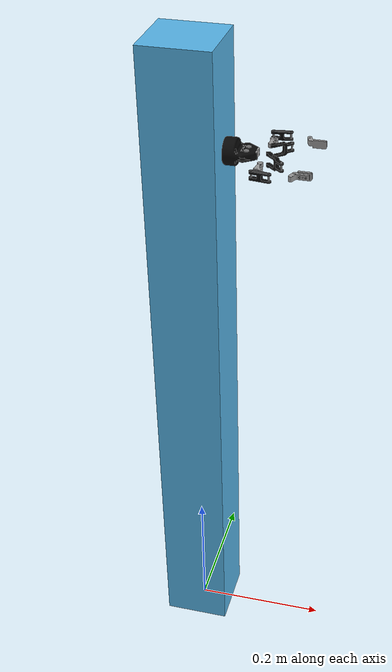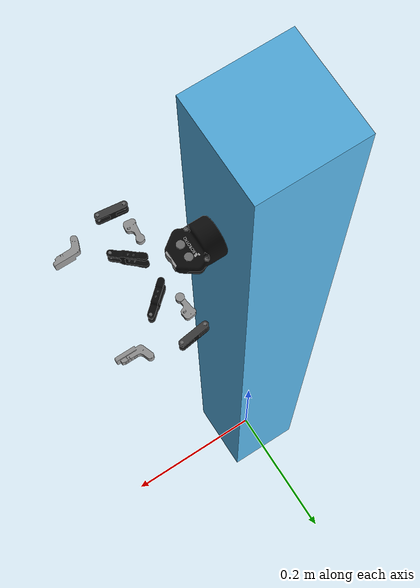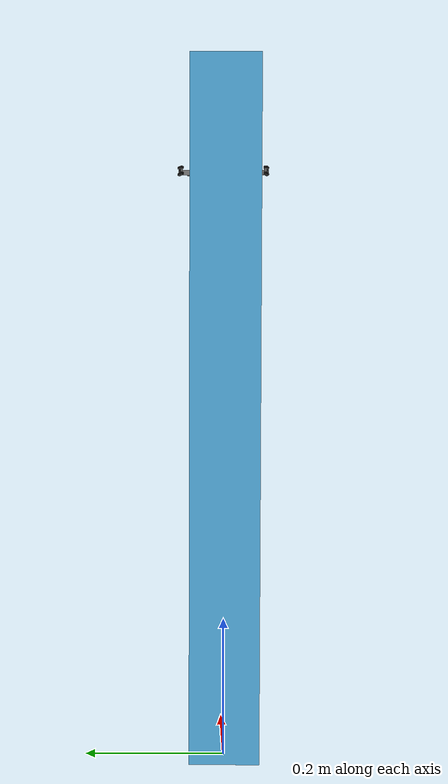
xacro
<?xml version="1.0" ?>
<!-- |    This document was autogenerated by xacro from robotiq.urdf.xacro             | -->
<!-- |    EDITING THIS FILE BY HAND IS NOT RECOMMENDED                                 | -->
<robot name="robotiq_85_gripper">
  <gazebo>
    <plugin filename="libgazebo_ros_control.so" name="gazebo_ros_control">
      <robotNamespace>/</robotNamespace>
    </plugin>
  </gazebo>
  <link name="world"/>
  <joint name="world_fixed" type="fixed">
    <origin rpy="0 0 0" xyz="0 0 0"/>
    <parent link="world"/>
    <child link="gripper_root_link"/>
  </joint>
  <link name="gripper_root_link">
    <visual>
      <origin rpy="0 0 0" xyz="0 0 0.5"/>
      <geometry>
        <box size="0.1 0.1 1.0"/>
      </geometry>
    </visual>
    <collision>
      <origin rpy="0 0 0" xyz="0 0 0.5"/>
      <geometry>
        <box size="0.1 0.1 1.0"/>
      </geometry>
    </collision>
    <inertial>
      <mass value="1e2"/>
      <origin xyz="0.0 0.0 0.0"/>
      <inertia ixx="0.000001" ixy="0.000000" ixz="0.000000" iyx="0.000000" iyy="0.000001" iyz="0.000000" izx="0.000000" izy="0.000000" izz="0.000001"/>
    </inertial>
  </link>
  <joint name="robotiq_85_base_joint" type="fixed">
    <parent link="gripper_root_link"/>
    <child link="robotiq_85_base_link"/>
    <origin rpy="0 0 0" xyz="0.05 0 0.85"/>
  </joint>
  <link name="robotiq_85_base_link">
    <visual>
      <geometry>
        <mesh filename="package://robotiq_85_description/meshes/visual/robotiq_85_base_link.dae"/>
      </geometry>
    </visual>
    <collision>
      <geometry>
        <mesh filename="package://robotiq_85_description/meshes/collision/robotiq_85_base_link.stl"/>
      </geometry>
    </collision>
    <inertial>
      <mass value="0.636951"/>
      <origin xyz="0.0 0.0 0.0"/>
      <inertia ixx="0.000380" ixy="0.000000" ixz="0.000000" iyx="0.000000" iyy="0.001110" iyz="0.000000" izx="0.000000" izy="0.000000" izz="0.001171"/>
    </inertial>
  </link>
  <joint name="robotiq_85_left_knuckle_joint" type="revolute">
    <parent link="robotiq_85_base_link"/>
    <child link="robotiq_85_left_knuckle_link"/>
    <axis xyz="0 0 1"/>
    <origin rpy="3.14159 0.0 0.0" xyz="0.05490451627 0.03060114443 0.0"/>
    <limit effort="50" lower="0.0" upper="0.804" velocity="0.5"/>
    <dynamics damping="100.0"/>
  </joint>
  <gazebo reference="robotiq_85_left_knuckle_link">
    <kp>1000000.0</kp>
    <kd>100.0</kd>
    <mu1>30.0</mu1>
    <mu2>30.0</mu2>
    <maxVel>1.0</maxVel>
    <minDepth>0.001</minDepth>
    <material>Gazebo/Grey</material>
  </gazebo>
  <joint name="robotiq_85_right_knuckle_joint" type="continuous">
    <parent link="robotiq_85_base_link"/>
    <child link="robotiq_85_right_knuckle_link"/>
    <axis xyz="0 0 1"/>
    <origin rpy="0.0 0.0 0.0" xyz="0.05490451627 -0.03060114443 0.0"/>
    <limit effort="50" lower="-3.14" upper="3.14" velocity="100.0"/>
    <mimic joint="robotiq_85_left_knuckle_joint"/>
    <dynamics damping="100.0"/>
  </joint>
  <gazebo reference="robotiq_85_right_knuckle_link">
    <kp>1000000.0</kp>
    <kd>100.0</kd>
    <mu1>30.0</mu1>
    <mu2>30.0</mu2>
    <maxVel>1.0</maxVel>
    <minDepth>0.001</minDepth>
    <material>Gazebo/Grey</material>
  </gazebo>
  <gazebo>
    <plugin filename="libroboticsgroup_gazebo_mimic_joint_plugin.so" name="{prefix}robotiq_85_right_knuckle_jointmimic_joint_plugin">
      <joint>robotiq_85_left_knuckle_joint</joint>
      <mimicJoint>robotiq_85_right_knuckle_joint</mimicJoint>
      <multiplier>1.0</multiplier>
      <offset>0</offset>
      <sensitiveness>0.0</sensitiveness>
      <!-- if absolute difference between setpoint and process value is below this threshold, do nothing; 0.0 = disable [rad] -->
      <maxEffort>10.0</maxEffort>
    </plugin>
  </gazebo>
  <link name="robotiq_85_left_knuckle_link">
    <visual>
      <geometry>
        <mesh filename="package://robotiq_85_description/meshes/visual/robotiq_85_knuckle_link.dae"/>
      </geometry>
    </visual>
    <collision>
      <geometry>
        <mesh filename="package://robotiq_85_description/meshes/collision/robotiq_85_knuckle_link.stl"/>
      </geometry>
    </collision>
    <inertial>
      <mass value="0.018491"/>
      <origin xyz="0.0 0.0 0.0"/>
      <inertia ixx="0.000009" ixy="-0.000001" ixz="0.000000" iyx="-0.000001" iyy="0.000001" iyz="0.000000" izx="0.000000" izy="0.000000" izz="0.000010"/>
    </inertial>
  </link>
  <link name="robotiq_85_right_knuckle_link">
    <visual>
      <geometry>
        <mesh filename="package://robotiq_85_description/meshes/visual/robotiq_85_knuckle_link.dae"/>
      </geometry>
    </visual>
    <collision>
      <geometry>
        <mesh filename="package://robotiq_85_description/meshes/collision/robotiq_85_knuckle_link.stl"/>
      </geometry>
    </collision>
    <inertial>
      <mass value="0.018491"/>
      <origin xyz="0.0 0.0 0.0"/>
      <inertia ixx="0.000009" ixy="-0.000001" ixz="0.000000" iyx="-0.000001" iyy="0.000001" iyz="0.000000" izx="0.000000" izy="0.000000" izz="0.000010"/>
    </inertial>
  </link>
  <joint name="robotiq_85_left_finger_joint" type="fixed">
    <parent link="robotiq_85_left_knuckle_link"/>
    <child link="robotiq_85_left_finger_link"/>
    <origin rpy="0 0 0" xyz="-0.00408552455 -0.03148604435 0.0"/>
  </joint>
  <joint name="robotiq_85_right_finger_joint" type="fixed">
    <parent link="robotiq_85_right_knuckle_link"/>
    <child link="robotiq_85_right_finger_link"/>
    <origin rpy="0 0 0" xyz="-0.00408552455 -0.03148604435 0.0"/>
  </joint>
  <link name="robotiq_85_left_finger_link">
    <visual>
      <geometry>
        <mesh filename="package://robotiq_85_description/meshes/visual/robotiq_85_finger_link.dae"/>
      </geometry>
    </visual>
    <collision>
      <geometry>
        <mesh filename="package://robotiq_85_description/meshes/collision/robotiq_85_finger_link.stl"/>
      </geometry>
    </collision>
    <inertial>
      <mass value="0.027309"/>
      <origin xyz="0.0 0.0 0.0"/>
      <inertia ixx="0.000003" ixy="-0.000002" ixz="0.000000" iyx="-0.000002" iyy="0.000021" iyz="0.000000" izx="0.000000" izy="0.000000" izz="0.000020"/>
    </inertial>
  </link>
  <link name="robotiq_85_right_finger_link">
    <visual>
      <geometry>
        <mesh filename="package://robotiq_85_description/meshes/visual/robotiq_85_finger_link.dae"/>
      </geometry>
    </visual>
    <collision>
      <geometry>
        <mesh filename="package://robotiq_85_description/meshes/collision/robotiq_85_finger_link.stl"/>
      </geometry>
    </collision>
    <inertial>
      <mass value="0.027309"/>
      <origin xyz="0.0 0.0 0.0"/>
      <inertia ixx="0.000003" ixy="-0.000002" ixz="0.000000" iyx="-0.000002" iyy="0.000021" iyz="0.000000" izx="0.000000" izy="0.000000" izz="0.000020"/>
    </inertial>
  </link>
  <joint name="robotiq_85_left_inner_knuckle_joint" type="continuous">
    <parent link="robotiq_85_base_link"/>
    <child link="robotiq_85_left_inner_knuckle_link"/>
    <axis xyz="0 0 1"/>
    <origin rpy="3.14159 0.0 0.0" xyz="0.06142 0.0127 0"/>
    <limit effort="0.1" lower="-3.14" upper="3.14" velocity="100.0"/>
    <mimic joint="robotiq_85_left_knuckle_joint" offset="0"/>
  </joint>
  <gazebo>
    <plugin filename="libroboticsgroup_gazebo_mimic_joint_plugin.so" name="robotiq_85_left_inner_knuckle_jointmimic_joint_plugin">
      <joint>robotiq_85_left_knuckle_joint</joint>
      <mimicJoint>robotiq_85_left_inner_knuckle_joint</mimicJoint>
      <multiplier>1.0</multiplier>
      <offset>0</offset>
      <sensitiveness>0.0</sensitiveness>
      <!-- if absolute difference between setpoint and process value is below this threshold, do nothing; 0.0 = disable [rad] -->
      <maxEffort>10.0</maxEffort>
    </plugin>
  </gazebo>
  <joint name="robotiq_85_right_inner_knuckle_joint" type="continuous">
    <parent link="robotiq_85_base_link"/>
    <child link="robotiq_85_right_inner_knuckle_link"/>
    <axis xyz="0 0 1"/>
    <origin rpy="0 0 0" xyz="0.06142 -0.0127 0"/>
    <limit effort="0.1" lower="-3.14" upper="3.14" velocity="100.0"/>
    <mimic joint="robotiq_85_left_knuckle_joint" offset="0"/>
  </joint>
  <gazebo>
    <plugin filename="libroboticsgroup_gazebo_mimic_joint_plugin.so" name="robotiq_85_right_inner_knuckle_jointmimic_joint_plugin">
      <joint>robotiq_85_left_knuckle_joint</joint>
      <mimicJoint>robotiq_85_right_inner_knuckle_joint</mimicJoint>
      <multiplier>1.0</multiplier>
      <offset>0</offset>
      <sensitiveness>0.0</sensitiveness>
      <!-- if absolute difference between setpoint and process value is below this threshold, do nothing; 0.0 = disable [rad] -->
      <maxEffort>10.0</maxEffort>
    </plugin>
  </gazebo>
  <link name="robotiq_85_left_inner_knuckle_link">
    <visual>
      <geometry>
        <mesh filename="package://robotiq_85_description/meshes/visual/robotiq_85_inner_knuckle_link.dae"/>
      </geometry>
    </visual>
    <collision>
      <geometry>
        <mesh filename="package://robotiq_85_description/meshes/collision/robotiq_85_inner_knuckle_link.stl"/>
      </geometry>
    </collision>
    <inertial>
      <mass value="0.029951"/>
      <origin xyz="0.0 0.0 0.0"/>
      <inertia ixx="0.000039" ixy="0.000000" ixz="0.000000" iyx="0.000000" iyy="0.000005" iyz="0.000000" izx="0.000000" izy="0.000000" izz="0.000035"/>
    </inertial>
  </link>
  <link name="robotiq_85_right_inner_knuckle_link">
    <visual>
      <geometry>
        <mesh filename="package://robotiq_85_description/meshes/visual/robotiq_85_inner_knuckle_link.dae"/>
      </geometry>
    </visual>
    <collision>
      <geometry>
        <mesh filename="package://robotiq_85_description/meshes/collision/robotiq_85_inner_knuckle_link.stl"/>
      </geometry>
    </collision>
    <inertial>
      <mass value="0.029951"/>
      <origin xyz="0.0 0.0 0.0"/>
      <inertia ixx="0.000039" ixy="0.000000" ixz="0.000000" iyx="0.000000" iyy="0.000005" iyz="0.000000" izx="0.000000" izy="0.000000" izz="0.000035"/>
    </inertial>
  </link>
  <joint name="robotiq_85_left_finger_tip_joint" type="continuous">
    <parent link="robotiq_85_left_inner_knuckle_link"/>
    <child link="robotiq_85_left_finger_tip_link"/>
    <axis xyz="0 0 1"/>
    <origin rpy="0.0 0.0 0.0" xyz="0.04303959807 -0.03759940821 0.0"/>
    <limit effort="0.1" lower="-3.14" upper="3.14" velocity="100.0"/>
    <mimic joint="robotiq_85_left_knuckle_joint" multiplier="-1"/>
  </joint>
  <gazebo>
    <plugin filename="libroboticsgroup_gazebo_mimic_joint_plugin.so" name="robotiq_85_left_finger_tip_jointmimic_joint_plugin">
      <joint>robotiq_85_left_knuckle_joint</joint>
      <mimicJoint>robotiq_85_left_finger_tip_joint</mimicJoint>
      <multiplier>1.0</multiplier>
      <offset>0</offset>
      <sensitiveness>0.0</sensitiveness>
      <!-- if absolute difference between setpoint and process value is below this threshold, do nothing; 0.0 = disable [rad] -->
      <maxEffort>10.0</maxEffort>
    </plugin>
  </gazebo>
  <joint name="robotiq_85_right_finger_tip_joint" type="continuous">
    <parent link="robotiq_85_right_inner_knuckle_link"/>
    <child link="robotiq_85_right_finger_tip_link"/>
    <axis xyz="0 0 1"/>
    <origin rpy="0.0 0.0 0.0" xyz="0.04303959807 -0.03759940821  0.0"/>
    <limit effort="0.1" lower="-3.14" upper="3.14" velocity="100.0"/>
    <mimic joint="robotiq_85_left_knuckle_joint" multiplier="-1"/>
  </joint>
  <gazebo>
    <plugin filename="libroboticsgroup_gazebo_mimic_joint_plugin.so" name="robotiq_85_right_finger_tip_jointmimic_joint_plugin">
      <joint>robotiq_85_left_knuckle_joint</joint>
      <mimicJoint>robotiq_85_right_finger_tip_joint</mimicJoint>
      <multiplier>1.0</multiplier>
      <offset>0</offset>
      <sensitiveness>0.0</sensitiveness>
      <!-- if absolute difference between setpoint and process value is below this threshold, do nothing; 0.0 = disable [rad] -->
      <maxEffort>10.0</maxEffort>
    </plugin>
  </gazebo>
  <link name="robotiq_85_left_finger_tip_link">
    <visual>
      <geometry>
        <mesh filename="package://robotiq_85_description/meshes/visual/robotiq_85_finger_tip_link.dae"/>
      </geometry>
    </visual>
    <collision>
      <geometry>
        <mesh filename="package://robotiq_85_description/meshes/collision/robotiq_85_finger_tip_link.stl"/>
      </geometry>
    </collision>
    <inertial>
      <mass value="0.019555"/>
      <origin xyz="0.0 0.0 0.0"/>
      <inertia ixx="0.000002" ixy="0.000000" ixz="0.000000" iyx="0.000000" iyy="0.000005" iyz="0.000000" izx="0.000000" izy="0.000000" izz="0.000006"/>
    </inertial>
  </link>
  <gazebo reference="robotiq_85_left_finger_tip_link">
    <kp>1000000.0</kp>
    <kd>100.0</kd>
    <mu1>30.0</mu1>
    <mu2>30.0</mu2>
    <maxVel>1.0</maxVel>
    <minDepth>0.001</minDepth>
    <material>Gazebo/Grey</material>
  </gazebo>
  <link name="robotiq_85_right_finger_tip_link">
    <visual>
      <geometry>
        <mesh filename="package://robotiq_85_description/meshes/visual/robotiq_85_finger_tip_link.dae"/>
      </geometry>
    </visual>
    <collision>
      <geometry>
        <mesh filename="package://robotiq_85_description/meshes/collision/robotiq_85_finger_tip_link.stl"/>
      </geometry>
    </collision>
    <inertial>
      <mass value="0.019555"/>
      <origin xyz="0.0 0.0 0.0"/>
      <inertia ixx="0.000002" ixy="0.000000" ixz="0.000000" iyx="0.000000" iyy="0.000005" iyz="0.000000" izx="0.000000" izy="0.000000" izz="0.000006"/>
    </inertial>
  </link>
  <gazebo reference="robotiq_85_right_finger_tip_link">
    <kp>1000000.0</kp>
    <kd>100.0</kd>
    <mu1>30.0</mu1>
    <mu2>30.0</mu2>
    <maxVel>1.0</maxVel>
    <minDepth>0.001</minDepth>
    <material>Gazebo/Grey</material>
  </gazebo>
  <transmission name="robotiq_85_left_knuckle_trans">
    <type>transmission_interface/SimpleTransmission</type>
    <joint name="robotiq_85_left_knuckle_joint">
      <hardwareInterface>hardware_interface/PositionJointInterface</hardwareInterface>
    </joint>
    <actuator name="robotiq_85_left_knuckle_motor">
      <mechanicalReduction>1</mechanicalReduction>
      <hardwareInterface>hardware_interface/PositionJointInterface</hardwareInterface>
    </actuator>
  </transmission>
  <gazebo>
    <!-- loading plugin: mimic joints works in gazebo now -->
    <plugin filename="libroboticsgroup_gazebo_mimic_joint_plugin.so" name="mimic_robotiq_85_1">
      <joint>robotiq_85_left_knuckle_joint</joint>
      <mimicJoint>robotiq_85_right_knuckle_joint</mimicJoint>
    </plugin>
    <plugin filename="libroboticsgroup_gazebo_mimic_joint_plugin.so" name="mimic_robotiq_85_2">
      <joint>robotiq_85_left_knuckle_joint</joint>
      <mimicJoint>robotiq_85_left_inner_knuckle_joint</mimicJoint>
    </plugin>
    <plugin filename="libroboticsgroup_gazebo_mimic_joint_plugin.so" name="mimic_robotiq_85_3">
      <joint>robotiq_85_left_knuckle_joint</joint>
      <mimicJoint>robotiq_85_right_inner_knuckle_joint</mimicJoint>
    </plugin>
    <plugin filename="libroboticsgroup_gazebo_mimic_joint_plugin.so" name="mimic_robotiq_85_4">
      <joint>robotiq_85_left_knuckle_joint</joint>
      <mimicJoint>robotiq_85_left_finger_tip_joint</mimicJoint>
      <multiplier>-1.0</multiplier>
      <offset>0.0</offset>
    </plugin>
    <plugin filename="libroboticsgroup_gazebo_mimic_joint_plugin.so" name="mimic_robotiq_85_5">
      <joint>robotiq_85_left_knuckle_joint</joint>
      <mimicJoint>robotiq_85_right_finger_tip_joint</mimicJoint>
      <multiplier>-1.0</multiplier>
      <offset>0.0</offset>
    </plugin>
  </gazebo>
</robot>
